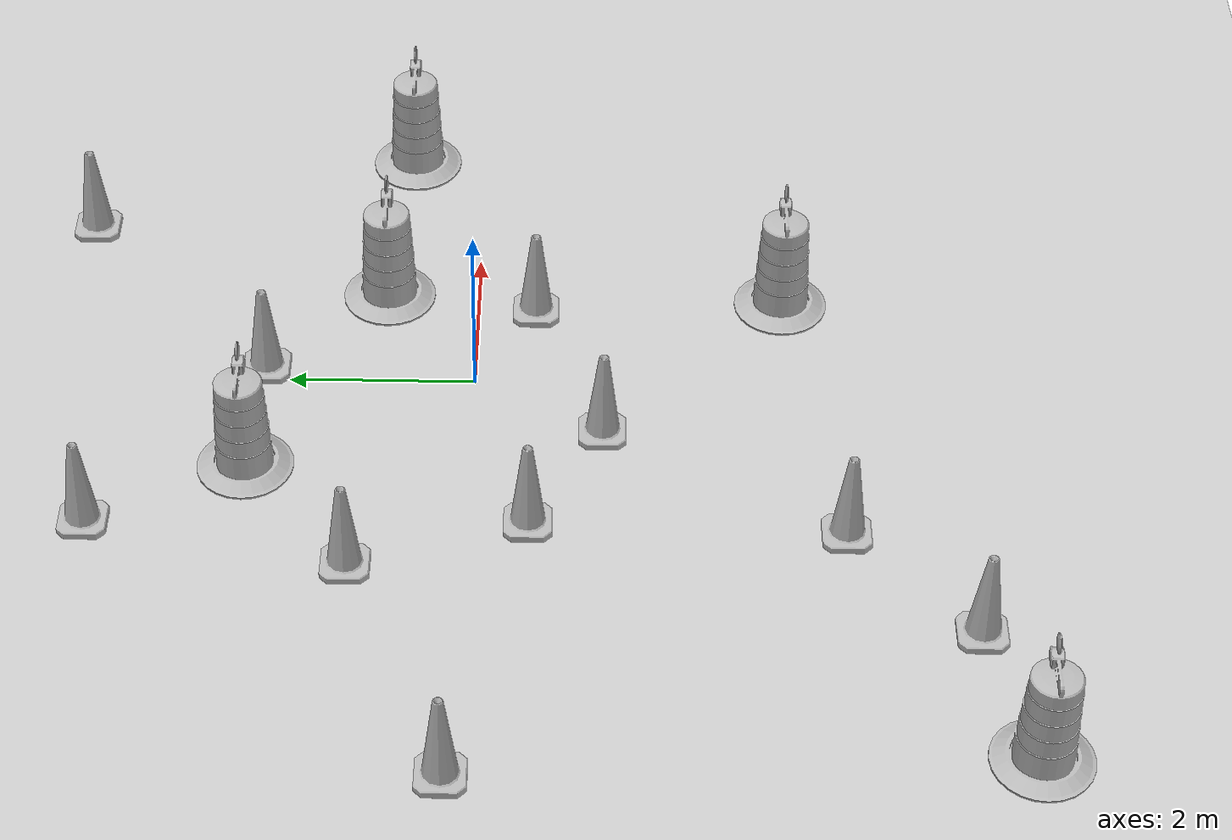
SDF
<sdf version="1.7">
 <world name="default">
  <light name="sun" type="directional">
   <pose>0 0 10 0 -0 0</pose>
   <diffuse>0.8 0.8 0.8 1</diffuse>
   <specular>0.2 0.2 0.2 1</specular>
   <attenuation>
    <range>1000</range>
    <constant>0.9</constant>
    <linear>0.01</linear>
    <quadratic>0.001</quadratic>
   </attenuation>
   <direction>-0.5 0.1 -0.9</direction>
   <spot><inner_angle>0</inner_angle><outer_angle>0</outer_angle><falloff>0</falloff></spot>
  </light>
  <model name="ground_plane">
   <static>1</static>
   <link name="link">
    <collision name="collision">
     <geometry><plane><normal>0 0 1</normal><size>100 100</size></plane></geometry>
     <surface>
      <contact><collide_bitmask>65535</collide_bitmask></contact>
      <friction><ode><mu>100</mu><mu2>50</mu2></ode></friction>
     </surface>
    </collision>
    <visual name="visual">
     <cast_shadows>0</cast_shadows>
     <geometry><plane><normal>0 0 1</normal><size>100 100</size></plane></geometry>
     <material>
      <script><uri>file://media/materials/scripts/gazebo.material</uri><name>Gazebo/Grey</name></script>
     </material>
    </visual>
   </link>
  </model>
  <gravity>0 0 -9.8</gravity>
  <magnetic_field>6e-06 2.3e-05 -4.2e-05</magnetic_field>
  <atmosphere type="adiabatic"/>
  <physics type="ode">
   <max_step_size>0.001</max_step_size>
   <real_time_factor>1</real_time_factor>
   <real_time_update_rate>1000</real_time_update_rate>
  </physics>
  <scene><ambient>0.4 0.4 0.4 1</ambient><background>0.7 0.7 0.7 1</background><shadows>1</shadows></scene>
  <audio><device>default</device></audio>
  <spherical_coordinates>
   <surface_model>EARTH_WGS84</surface_model>
   <latitude_deg>0</latitude_deg>
   <longitude_deg>0</longitude_deg>
   <elevation>0</elevation>
   <heading_deg>0</heading_deg>
  </spherical_coordinates>
  <model name="Construction Barrel">
   <link name="link">
    <inertial>
     <pose>0 0 0.4 0 -0 0</pose>
     <mass>500</mass>
     <inertia><ixx>51.2096</ixx><iyy>51.2096</iyy><izz>25</izz><ixy>0</ixy><ixz>0</ixz><iyz>0</iyz></inertia>
    </inertial>
    <collision name="collision">
     <geometry><mesh><uri>model://construction_barrel/meshes/construction_barrel.dae</uri></mesh></geometry>
    </collision>
    <visual name="visual">
     <geometry><mesh><uri>model://construction_barrel/meshes/construction_barrel.dae</uri></mesh></geometry>
    </visual>
   </link>
   <pose>1.41012 1.00543 -1e-06 0 5e-06 -2.5e-05</pose>
  </model>
  <model name="Construction Barrel_0">
   <link name="link">
    <inertial>
     <pose>0 0 0.4 0 -0 0</pose>
     <mass>500</mass>
     <inertia><ixx>51.2096</ixx><iyy>51.2096</iyy><izz>25</izz><ixy>0</ixy><ixz>0</ixz><iyz>0</iyz></inertia>
    </inertial>
    <collision name="collision">
     <geometry><mesh><uri>model://construction_barrel/meshes/construction_barrel.dae</uri></mesh></geometry>
    </collision>
    <visual name="visual">
     <geometry><mesh><uri>model://construction_barrel/meshes/construction_barrel.dae</uri></mesh></geometry>
    </visual>
   </link>
   <pose>-1.31659 2.36562 -1e-06 0 5e-06 -2.4e-05</pose>
  </model>
  <model name="Construction Cone">
   <link name="link">
    <collision name="collision">
     <geometry>
      <mesh><scale>10 10 10</scale><uri>model://construction_cone/meshes/construction_cone.dae</uri></mesh>
     </geometry>
    </collision>
    <visual name="visual">
     <geometry>
      <mesh><scale>10 10 10</scale><uri>model://construction_cone/meshes/construction_cone.dae</uri></mesh>
     </geometry>
    </visual>
    <inertial>
     <inertia><ixx>1</ixx><ixy>0</ixy><ixz>0</ixz><iyy>1</iyy><iyz>0</iyz><izz>1</izz></inertia>
     <mass>1</mass>
    </inertial>
   </link>
   <pose>0.187337 2.26726 -0 0 -1e-06 0</pose>
  </model>
  <model name="Construction Cone_0">
   <link name="link">
    <collision name="collision">
     <geometry>
      <mesh><scale>10 10 10</scale><uri>model://construction_cone/meshes/construction_cone.dae</uri></mesh>
     </geometry>
    </collision>
    <visual name="visual">
     <geometry>
      <mesh><scale>10 10 10</scale><uri>model://construction_cone/meshes/construction_cone.dae</uri></mesh>
     </geometry>
    </visual>
    <inertial>
     <inertia><ixx>1</ixx><ixy>0</ixy><ixz>0</ixz><iyy>1</iyy><iyz>0</iyz><izz>1</izz></inertia>
     <mass>1</mass>
    </inertial>
   </link>
   <pose>-2.74504 1.22141 -0 0 -0 0</pose>
  </model>
  <model name="Construction Cone_1">
   <link name="link">
    <collision name="collision">
     <geometry>
      <mesh><scale>10 10 10</scale><uri>model://construction_cone/meshes/construction_cone.dae</uri></mesh>
     </geometry>
    </collision>
    <visual name="visual">
     <geometry>
      <mesh><scale>10 10 10</scale><uri>model://construction_cone/meshes/construction_cone.dae</uri></mesh>
     </geometry>
    </visual>
    <inertial>
     <inertia><ixx>1</ixx><ixy>0</ixy><ixz>0</ixz><iyy>1</iyy><iyz>0</iyz><izz>1</izz></inertia>
     <mass>1</mass>
    </inertial>
   </link>
   <pose>-2.1286 -0.609447 -0 0 -0 0</pose>
  </model>
  <model name="Construction Cone_2">
   <link name="link">
    <collision name="collision">
     <geometry>
      <mesh><scale>10 10 10</scale><uri>model://construction_cone/meshes/construction_cone.dae</uri></mesh>
     </geometry>
    </collision>
    <visual name="visual">
     <geometry>
      <mesh><scale>10 10 10</scale><uri>model://construction_cone/meshes/construction_cone.dae</uri></mesh>
     </geometry>
    </visual>
    <inertial>
     <inertia><ixx>1</ixx><ixy>0</ixy><ixz>0</ixz><iyy>1</iyy><iyz>0</iyz><izz>1</izz></inertia>
     <mass>1</mass>
    </inertial>
   </link>
   <pose>-0.769347 -1.37036 -0 0 -1e-06 0</pose>
  </model>
  <model name="Construction Cone_3">
   <link name="link">
    <collision name="collision">
     <geometry>
      <mesh><scale>10 10 10</scale><uri>model://construction_cone/meshes/construction_cone.dae</uri></mesh>
     </geometry>
    </collision>
    <visual name="visual">
     <geometry>
      <mesh><scale>10 10 10</scale><uri>model://construction_cone/meshes/construction_cone.dae</uri></mesh>
     </geometry>
    </visual>
    <inertial>
     <inertia><ixx>1</ixx><ixy>0</ixy><ixz>0</ixz><iyy>1</iyy><iyz>0</iyz><izz>1</izz></inertia>
     <mass>1</mass>
    </inertial>
   </link>
   <pose>1.15879 -0.632103 -1e-05 0 -0 0</pose>
  </model>
  <model name="Construction Cone_4">
   <link name="link">
    <collision name="collision">
     <geometry>
      <mesh><scale>10 10 10</scale><uri>model://construction_cone/meshes/construction_cone.dae</uri></mesh>
     </geometry>
    </collision>
    <visual name="visual">
     <geometry>
      <mesh><scale>10 10 10</scale><uri>model://construction_cone/meshes/construction_cone.dae</uri></mesh>
     </geometry>
    </visual>
    <inertial>
     <inertia><ixx>1</ixx><ixy>0</ixy><ixz>0</ixz><iyy>1</iyy><iyz>0</iyz><izz>1</izz></inertia>
     <mass>1</mass>
    </inertial>
   </link>
   <pose>-5.44691 0.139337 -0 0 -0 0</pose>
  </model>
  <model name="Construction Barrel_1">
   <link name="link">
    <inertial>
     <pose>0 0 0.4 0 -0 0</pose>
     <mass>500</mass>
     <inertia><ixx>51.2096</ixx><iyy>51.2096</iyy><izz>25</izz><ixy>0</ixy><ixz>0</ixz><iyz>0</iyz></inertia>
    </inertial>
    <collision name="collision">
     <geometry><mesh><uri>model://construction_barrel/meshes/construction_barrel.dae</uri></mesh></geometry>
    </collision>
    <visual name="visual">
     <geometry><mesh><uri>model://construction_barrel/meshes/construction_barrel.dae</uri></mesh></geometry>
    </visual>
   </link>
   <pose>1.33357 -3.34014 -5e-06 -9e-06 -9e-06 -1.5e-05</pose>
  </model>
  <model name="Construction Cone_5">
   <link name="link">
    <collision name="collision">
     <geometry>
      <mesh><scale>10 10 10</scale><uri>model://construction_cone/meshes/construction_cone.dae</uri></mesh>
     </geometry>
    </collision>
    <visual name="visual">
     <geometry>
      <mesh><scale>10 10 10</scale><uri>model://construction_cone/meshes/construction_cone.dae</uri></mesh>
     </geometry>
    </visual>
    <inertial>
     <inertia><ixx>1</ixx><ixy>0</ixy><ixz>0</ixz><iyy>1</iyy><iyz>0</iyz><izz>1</izz></inertia>
     <mass>1</mass>
    </inertial>
   </link>
   <pose>2.52585 4.41482 -0 0 -0 0</pose>
  </model>
  <model name="Construction Barrel_2">
   <link name="link">
    <inertial>
     <pose>0 0 0.4 0 -0 0</pose>
     <mass>500</mass>
     <inertia><ixx>51.2096</ixx><iyy>51.2096</iyy><izz>25</izz><ixy>0</ixy><ixz>0</ixz><iyz>0</iyz></inertia>
    </inertial>
    <collision name="collision">
     <geometry><mesh><uri>model://construction_barrel/meshes/construction_barrel.dae</uri></mesh></geometry>
    </collision>
    <visual name="visual">
     <geometry><mesh><uri>model://construction_barrel/meshes/construction_barrel.dae</uri></mesh></geometry>
    </visual>
   </link>
   <pose>-5.13896 -5.52444 0 0 0 -1e-05</pose>
  </model>
  <model name="Construction Cone_6">
   <link name="link">
    <collision name="collision">
     <geometry>
      <mesh><scale>10 10 10</scale><uri>model://construction_cone/meshes/construction_cone.dae</uri></mesh>
     </geometry>
    </collision>
    <visual name="visual">
     <geometry>
      <mesh><scale>10 10 10</scale><uri>model://construction_cone/meshes/construction_cone.dae</uri></mesh>
     </geometry>
    </visual>
    <inertial>
     <inertia><ixx>1</ixx><ixy>0</ixy><ixz>0</ixz><iyy>1</iyy><iyz>0</iyz><izz>1</izz></inertia>
     <mass>1</mass>
    </inertial>
   </link>
   <pose>-2.17462 3.94817 -0 0 -1e-06 0</pose>
  </model>
  <model name="Construction Barrel_3">
   <link name="link">
    <inertial>
     <pose>0 0 0.4 0 -0 0</pose>
     <mass>500</mass>
     <inertia><ixx>51.2096</ixx><iyy>51.2096</iyy><izz>25</izz><ixy>0</ixy><ixz>0</ixz><iyz>0</iyz></inertia>
    </inertial>
    <collision name="collision">
     <geometry><mesh><uri>model://construction_barrel/meshes/construction_barrel.dae</uri></mesh></geometry>
    </collision>
    <visual name="visual">
     <geometry><mesh><uri>model://construction_barrel/meshes/construction_barrel.dae</uri></mesh></geometry>
    </visual>
   </link>
   <pose>3.78845 0.809505 0 1e-06 1e-06 -8e-06</pose>
  </model>
  <model name="Construction Cone_7">
   <link name="link">
    <collision name="collision">
     <geometry>
      <mesh><scale>10 10 10</scale><uri>model://construction_cone/meshes/construction_cone.dae</uri></mesh>
     </geometry>
    </collision>
    <visual name="visual">
     <geometry>
      <mesh><scale>10 10 10</scale><uri>model://construction_cone/meshes/construction_cone.dae</uri></mesh>
     </geometry>
    </visual>
    <inertial>
     <inertia><ixx>1</ixx><ixy>0</ixy><ixz>0</ixz><iyy>1</iyy><iyz>0</iyz><izz>1</izz></inertia>
     <mass>1</mass>
    </inertial>
   </link>
   <pose>-2.22882 -3.86246 -5e-06 -4e-06 1e-06 0</pose>
  </model>
  <model name="Construction Cone_8">
   <link name="link">
    <collision name="collision">
     <geometry>
      <mesh><scale>10 10 10</scale><uri>model://construction_cone/meshes/construction_cone.dae</uri></mesh>
     </geometry>
    </collision>
    <visual name="visual">
     <geometry>
      <mesh><scale>10 10 10</scale><uri>model://construction_cone/meshes/construction_cone.dae</uri></mesh>
     </geometry>
    </visual>
    <inertial>
     <inertia><ixx>1</ixx><ixy>0</ixy><ixz>0</ixz><iyy>1</iyy><iyz>0</iyz><izz>1</izz></inertia>
     <mass>1</mass>
    </inertial>
   </link>
   <pose>-3.55926 -5.11314 -0 0 -1e-06 0</pose>
  </model>
 </world>
</sdf>
